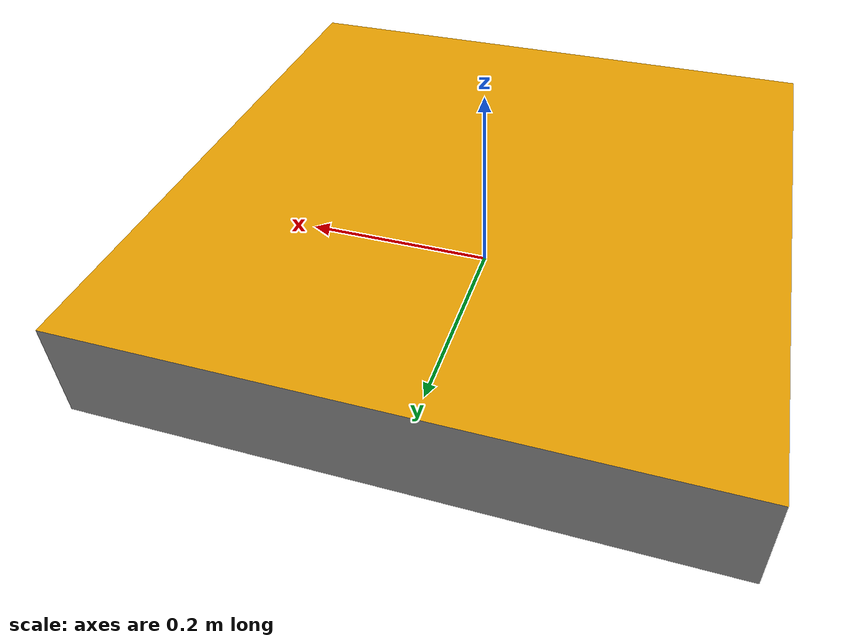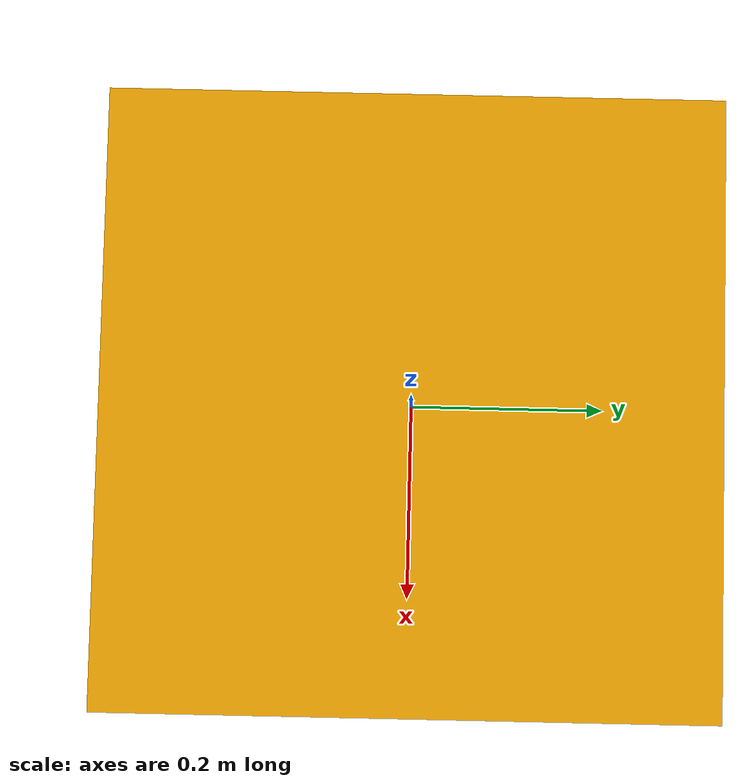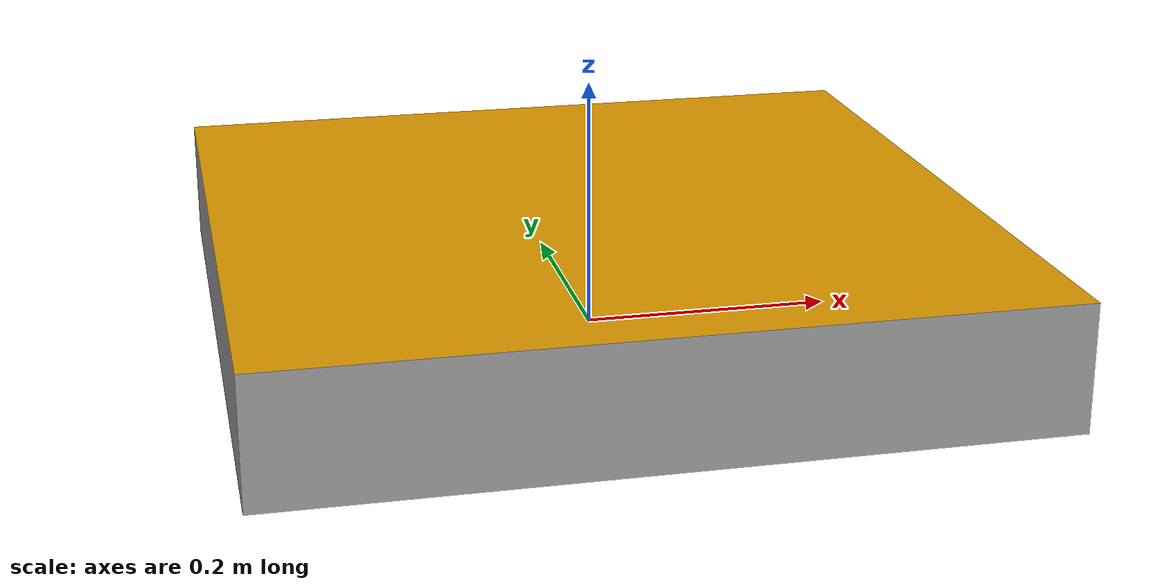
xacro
<?xml version="1.0"?>
<robot name="box" xmlns:xacro="http://ros.org/wiki/xacro">
  <xacro:arg name="mesh_uri" default="package://conveyor_belt/meshes/box/box.dae"/>

  <link name="base_link">
    <inertial>
      <origin xyz="0.0 0.0 0.05" rpy="0 0 0"/>
      <mass value="2.0"/>
      <inertia
        ixx="0.0617" ixy="0" ixz="0"
        iyy="0.0617" iyz="0"
        izz="0.12"/>
    </inertial>

    <!-- Visual: DAE with texture on top -->
    <visual>
      <origin xyz="0 0 0" rpy="0 0 0"/>
      <geometry>
        <mesh filename="$(arg mesh_uri)"/>
      </geometry>
    </visual>

    <!-- Collision: simple box primitive matching exact DAE size -->
    <!-- 0.6 x 0.6 x 0.1 m, origin at centre of mass -->
    <collision>
      <origin xyz="0.0 0.0 0.05" rpy="0 0 0"/>
      <geometry>
        <box size="0.6 0.6 0.1"/>
      </geometry>
    </collision>
  </link>

</robot>
